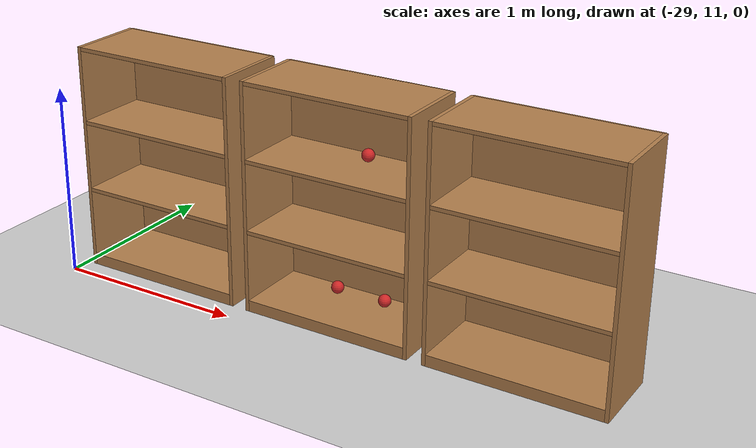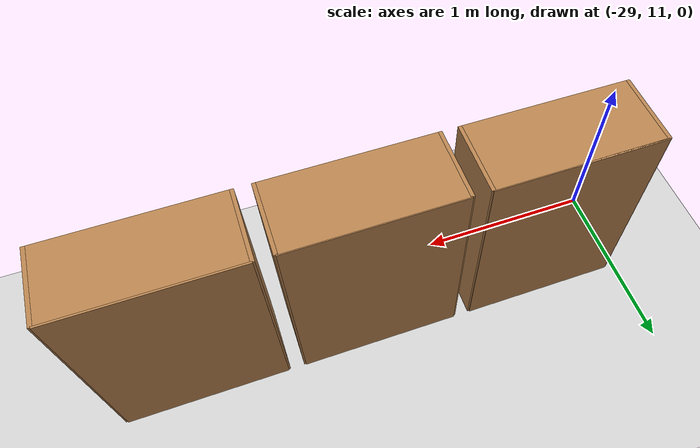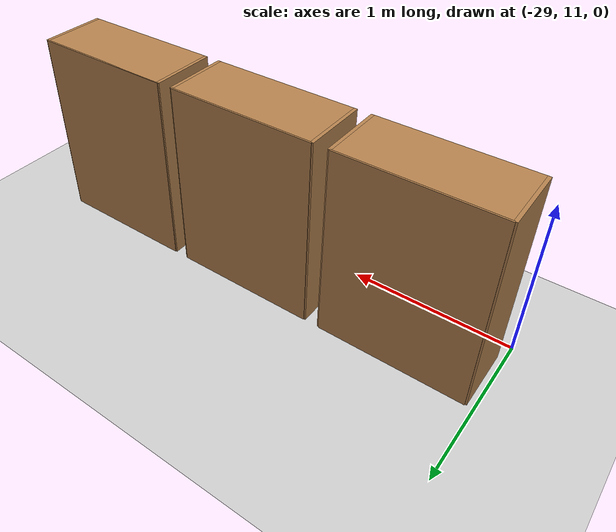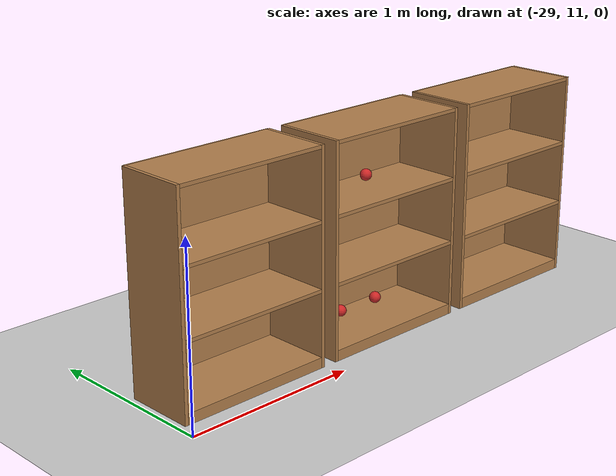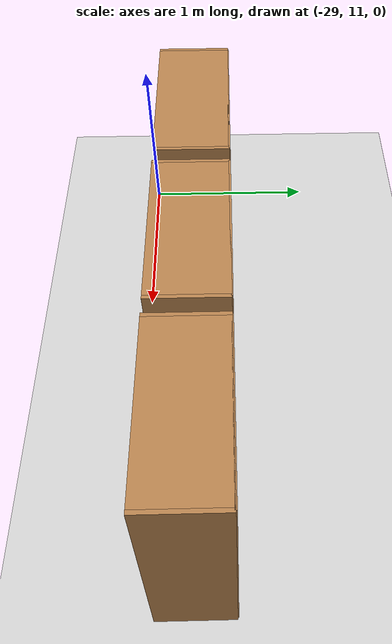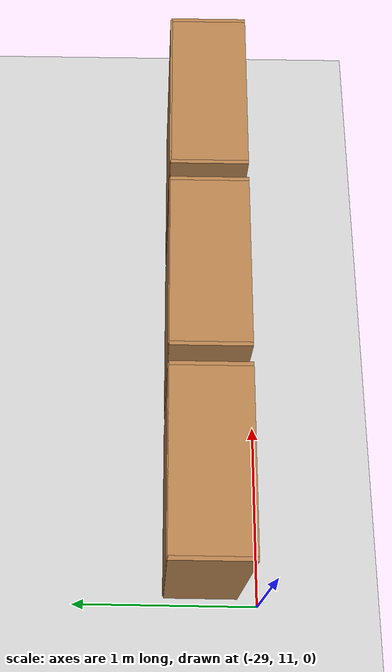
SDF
<sdf version="1.7">
 <world name="default">
  <model name="ground_plane">
   <static>1</static>
   <link name="link">
    <collision name="collision">
     <geometry><plane><normal>0 0 1</normal><size>100 100</size></plane></geometry>
     <surface>
      <contact><collide_bitmask>65535</collide_bitmask></contact>
      <friction><ode><mu>100</mu><mu2>50</mu2></ode></friction>
     </surface>
    </collision>
    <visual name="visual">
     <cast_shadows>0</cast_shadows>
     <geometry><plane><normal>0 0 1</normal><size>100 100</size></plane></geometry>
     <material>
      <script><uri>file://media/materials/scripts/gazebo.material</uri><name>Gazebo/Grey</name></script>
     </material>
    </visual>
   </link>
  </model>
  <model name="bookshelf_clone">
   <static>1</static>
   <link name="link">
    <inertial><mass>1</mass></inertial>
    <collision name="back">
     <pose>0 0.005 0.6 0 -0 0</pose>
     <geometry><box><size>0.9 0.01 1.2</size></box></geometry>
    </collision>
    <visual name="visual1">
     <pose>0 0.005 0.6 0 -0 0</pose>
     <geometry><box><size>0.9 0.01 1.2</size></box></geometry>
     <material>
      <script><uri>file://media/materials/scripts/gazebo.material</uri><name>Gazebo/Wood</name></script>
     </material>
    </visual>
    <collision name="left_side">
     <pose>0.45 -0.195 0.6 0 -0 0</pose>
     <geometry><box><size>0.02 0.4 1.2</size></box></geometry>
    </collision>
    <visual name="visual2">
     <pose>0.45 -0.195 0.6 0 -0 0</pose>
     <geometry><box><size>0.02 0.4 1.2</size></box></geometry>
     <material>
      <script><uri>file://media/materials/scripts/gazebo.material</uri><name>Gazebo/Wood</name></script>
     </material>
    </visual>
    <collision name="right_side">
     <pose>-0.45 -0.195 0.6 0 -0 0</pose>
     <geometry><box><size>0.02 0.4 1.2</size></box></geometry>
    </collision>
    <visual name="visual3">
     <pose>-0.45 -0.195 0.6 0 -0 0</pose>
     <geometry><box><size>0.02 0.4 1.2</size></box></geometry>
     <material>
      <script><uri>file://media/materials/scripts/gazebo.material</uri><name>Gazebo/Wood</name></script>
     </material>
    </visual>
    <collision name="bottom">
     <pose>0 -0.195 0.03 0 -0 0</pose>
     <geometry><box><size>0.88 0.4 0.06</size></box></geometry>
    </collision>
    <visual name="visual4">
     <pose>0 -0.195 0.03 0 -0 0</pose>
     <geometry><box><size>0.88 0.4 0.06</size></box></geometry>
     <material>
      <script><uri>file://media/materials/scripts/gazebo.material</uri><name>Gazebo/Wood</name></script>
     </material>
    </visual>
    <collision name="top">
     <pose>0 -0.195 1.19 0 -0 0</pose>
     <geometry><box><size>0.88 0.4 0.02</size></box></geometry>
    </collision>
    <visual name="visual5">
     <pose>0 -0.195 1.19 0 -0 0</pose>
     <geometry><box><size>0.88 0.4 0.02</size></box></geometry>
     <material>
      <script><uri>file://media/materials/scripts/gazebo.material</uri><name>Gazebo/Wood</name></script>
     </material>
    </visual>
    <collision name="low_shelf">
     <pose>0 -0.195 0.43 0 -0 0</pose>
     <geometry><box><size>0.88 0.4 0.02</size></box></geometry>
    </collision>
    <visual name="visual6">
     <pose>0 -0.195 0.43 0 -0 0</pose>
     <geometry><box><size>0.88 0.4 0.02</size></box></geometry>
     <material>
      <script><uri>file://media/materials/scripts/gazebo.material</uri><name>Gazebo/Wood</name></script>
     </material>
    </visual>
    <collision name="high_shelf">
     <pose>0 -0.195 0.8 0 -0 0</pose>
     <geometry><box><size>0.88 0.4 0.02</size></box></geometry>
    </collision>
    <visual name="visual7">
     <pose>0 -0.195 0.8 0 -0 0</pose>
     <geometry><box><size>0.88 0.4 0.02</size></box></geometry>
     <material>
      <script><uri>file://media/materials/scripts/gazebo.material</uri><name>Gazebo/Wood</name></script>
     </material>
    </visual>
   </link>
   <pose>-27.5 11.5 0 0 -0 0</pose>
  </model>
  <model name="bookshelf_clone_0">
   <static>1</static>
   <link name="link">
    <inertial><mass>1</mass></inertial>
    <collision name="back">
     <pose>0 0.005 0.6 0 -0 0</pose>
     <geometry><box><size>0.9 0.01 1.2</size></box></geometry>
    </collision>
    <visual name="visual1">
     <pose>0 0.005 0.6 0 -0 0</pose>
     <geometry><box><size>0.9 0.01 1.2</size></box></geometry>
     <material>
      <script><uri>file://media/materials/scripts/gazebo.material</uri><name>Gazebo/Wood</name></script>
     </material>
    </visual>
    <collision name="left_side">
     <pose>0.45 -0.195 0.6 0 -0 0</pose>
     <geometry><box><size>0.02 0.4 1.2</size></box></geometry>
    </collision>
    <visual name="visual2">
     <pose>0.45 -0.195 0.6 0 -0 0</pose>
     <geometry><box><size>0.02 0.4 1.2</size></box></geometry>
     <material>
      <script><uri>file://media/materials/scripts/gazebo.material</uri><name>Gazebo/Wood</name></script>
     </material>
    </visual>
    <collision name="right_side">
     <pose>-0.45 -0.195 0.6 0 -0 0</pose>
     <geometry><box><size>0.02 0.4 1.2</size></box></geometry>
    </collision>
    <visual name="visual3">
     <pose>-0.45 -0.195 0.6 0 -0 0</pose>
     <geometry><box><size>0.02 0.4 1.2</size></box></geometry>
     <material>
      <script><uri>file://media/materials/scripts/gazebo.material</uri><name>Gazebo/Wood</name></script>
     </material>
    </visual>
    <collision name="bottom">
     <pose>0 -0.195 0.03 0 -0 0</pose>
     <geometry><box><size>0.88 0.4 0.06</size></box></geometry>
    </collision>
    <visual name="visual4">
     <pose>0 -0.195 0.03 0 -0 0</pose>
     <geometry><box><size>0.88 0.4 0.06</size></box></geometry>
     <material>
      <script><uri>file://media/materials/scripts/gazebo.material</uri><name>Gazebo/Wood</name></script>
     </material>
    </visual>
    <collision name="top">
     <pose>0 -0.195 1.19 0 -0 0</pose>
     <geometry><box><size>0.88 0.4 0.02</size></box></geometry>
    </collision>
    <visual name="visual5">
     <pose>0 -0.195 1.19 0 -0 0</pose>
     <geometry><box><size>0.88 0.4 0.02</size></box></geometry>
     <material>
      <script><uri>file://media/materials/scripts/gazebo.material</uri><name>Gazebo/Wood</name></script>
     </material>
    </visual>
    <collision name="low_shelf">
     <pose>0 -0.195 0.43 0 -0 0</pose>
     <geometry><box><size>0.88 0.4 0.02</size></box></geometry>
    </collision>
    <visual name="visual6">
     <pose>0 -0.195 0.43 0 -0 0</pose>
     <geometry><box><size>0.88 0.4 0.02</size></box></geometry>
     <material>
      <script><uri>file://media/materials/scripts/gazebo.material</uri><name>Gazebo/Wood</name></script>
     </material>
    </visual>
    <collision name="high_shelf">
     <pose>0 -0.195 0.8 0 -0 0</pose>
     <geometry><box><size>0.88 0.4 0.02</size></box></geometry>
    </collision>
    <visual name="visual7">
     <pose>0 -0.195 0.8 0 -0 0</pose>
     <geometry><box><size>0.88 0.4 0.02</size></box></geometry>
     <material>
      <script><uri>file://media/materials/scripts/gazebo.material</uri><name>Gazebo/Wood</name></script>
     </material>
    </visual>
   </link>
   <pose>-26.5 11.5 0 0 -0 0</pose>
  </model>
  <model name="bookshelf_clone_clone">
   <static>1</static>
   <link name="link">
    <inertial><mass>1</mass></inertial>
    <collision name="back">
     <pose>0 0.005 0.6 0 -0 0</pose>
     <geometry><box><size>0.9 0.01 1.2</size></box></geometry>
    </collision>
    <visual name="visual1">
     <pose>0 0.005 0.6 0 -0 0</pose>
     <geometry><box><size>0.9 0.01 1.2</size></box></geometry>
     <material>
      <script><uri>file://media/materials/scripts/gazebo.material</uri><name>Gazebo/Wood</name></script>
     </material>
    </visual>
    <collision name="left_side">
     <pose>0.45 -0.195 0.6 0 -0 0</pose>
     <geometry><box><size>0.02 0.4 1.2</size></box></geometry>
    </collision>
    <visual name="visual2">
     <pose>0.45 -0.195 0.6 0 -0 0</pose>
     <geometry><box><size>0.02 0.4 1.2</size></box></geometry>
     <material>
      <script><uri>file://media/materials/scripts/gazebo.material</uri><name>Gazebo/Wood</name></script>
     </material>
    </visual>
    <collision name="right_side">
     <pose>-0.45 -0.195 0.6 0 -0 0</pose>
     <geometry><box><size>0.02 0.4 1.2</size></box></geometry>
    </collision>
    <visual name="visual3">
     <pose>-0.45 -0.195 0.6 0 -0 0</pose>
     <geometry><box><size>0.02 0.4 1.2</size></box></geometry>
     <material>
      <script><uri>file://media/materials/scripts/gazebo.material</uri><name>Gazebo/Wood</name></script>
     </material>
    </visual>
    <collision name="bottom">
     <pose>0 -0.195 0.03 0 -0 0</pose>
     <geometry><box><size>0.88 0.4 0.06</size></box></geometry>
    </collision>
    <visual name="visual4">
     <pose>0 -0.195 0.03 0 -0 0</pose>
     <geometry><box><size>0.88 0.4 0.06</size></box></geometry>
     <material>
      <script><uri>file://media/materials/scripts/gazebo.material</uri><name>Gazebo/Wood</name></script>
     </material>
    </visual>
    <collision name="top">
     <pose>0 -0.195 1.19 0 -0 0</pose>
     <geometry><box><size>0.88 0.4 0.02</size></box></geometry>
    </collision>
    <visual name="visual5">
     <pose>0 -0.195 1.19 0 -0 0</pose>
     <geometry><box><size>0.88 0.4 0.02</size></box></geometry>
     <material>
      <script><uri>file://media/materials/scripts/gazebo.material</uri><name>Gazebo/Wood</name></script>
     </material>
    </visual>
    <collision name="low_shelf">
     <pose>0 -0.195 0.43 0 -0 0</pose>
     <geometry><box><size>0.88 0.4 0.02</size></box></geometry>
    </collision>
    <visual name="visual6">
     <pose>0 -0.195 0.43 0 -0 0</pose>
     <geometry><box><size>0.88 0.4 0.02</size></box></geometry>
     <material>
      <script><uri>file://media/materials/scripts/gazebo.material</uri><name>Gazebo/Wood</name></script>
     </material>
    </visual>
    <collision name="high_shelf">
     <pose>0 -0.195 0.8 0 -0 0</pose>
     <geometry><box><size>0.88 0.4 0.02</size></box></geometry>
    </collision>
    <visual name="visual7">
     <pose>0 -0.195 0.8 0 -0 0</pose>
     <geometry><box><size>0.88 0.4 0.02</size></box></geometry>
     <material>
      <script><uri>file://media/materials/scripts/gazebo.material</uri><name>Gazebo/Wood</name></script>
     </material>
    </visual>
   </link>
   <pose>-28.5 11.5 0 0 -0 0</pose>
  </model>
  <model name="RoboCup SPL Ball_clone_0">
   <static>0</static>
   <link name="ball">
    <inertial>
     <mass>0.0056</mass>
     <inertia>
      <ixx>2.37e-06</ixx>
      <iyy>2.37e-06</iyy>
      <izz>2.37e-06</izz>
      <ixy>0</ixy>
      <ixz>0</ixz>
      <iyz>0</iyz>
     </inertia>
    </inertial>
    <collision name="collision"><geometry><sphere><radius>0.0325</radius></sphere></geometry></collision>
    <visual name="visual">
     <geometry><sphere><radius>0.0325</radius></sphere></geometry>
     <material>
      <script><uri>file://media/materials/scripts/gazebo.material</uri><name>Gazebo/RedBright</name></script>
     </material>
    </visual>
   </link>
   <pose>-27.6134 11.4131 0.0925 0.062087 -0 0</pose>
  </model>
  <model name="RoboCup SPL Ball_clone_2">
   <static>0</static>
   <link name="ball">
    <inertial>
     <mass>0.0056</mass>
     <inertia>
      <ixx>2.37e-06</ixx>
      <iyy>2.37e-06</iyy>
      <izz>2.37e-06</izz>
      <ixy>0</ixy>
      <ixz>0</ixz>
      <iyz>0</iyz>
     </inertia>
    </inertial>
    <collision name="collision"><geometry><sphere><radius>0.0325</radius></sphere></geometry></collision>
    <visual name="visual">
     <geometry><sphere><radius>0.0325</radius></sphere></geometry>
     <material>
      <script><uri>file://media/materials/scripts/gazebo.material</uri><name>Gazebo/RedBright</name></script>
     </material>
    </visual>
   </link>
   <pose>-27.3398 11.4127 0.0925 0.062087 -0 0</pose>
  </model>
  <model name="RoboCup SPL Ball_clone_clone_2_clone_3">
   <static>0</static>
   <link name="ball">
    <inertial>
     <mass>0.0056</mass>
     <inertia>
      <ixx>2.37e-06</ixx>
      <iyy>2.37e-06</iyy>
      <izz>2.37e-06</izz>
      <ixy>0</ixy>
      <ixz>0</ixz>
      <iyz>0</iyz>
     </inertia>
    </inertial>
    <collision name="collision"><geometry><sphere><radius>0.0325</radius></sphere></geometry></collision>
    <visual name="visual">
     <geometry><sphere><radius>0.0325</radius></sphere></geometry>
     <material>
      <script><uri>file://media/materials/scripts/gazebo.material</uri><name>Gazebo/RedBright</name></script>
     </material>
    </visual>
   </link>
   <pose>-27.436 11.4024 0.8425 0.062088 -0 0</pose>
  </model>
 </world>
</sdf>
